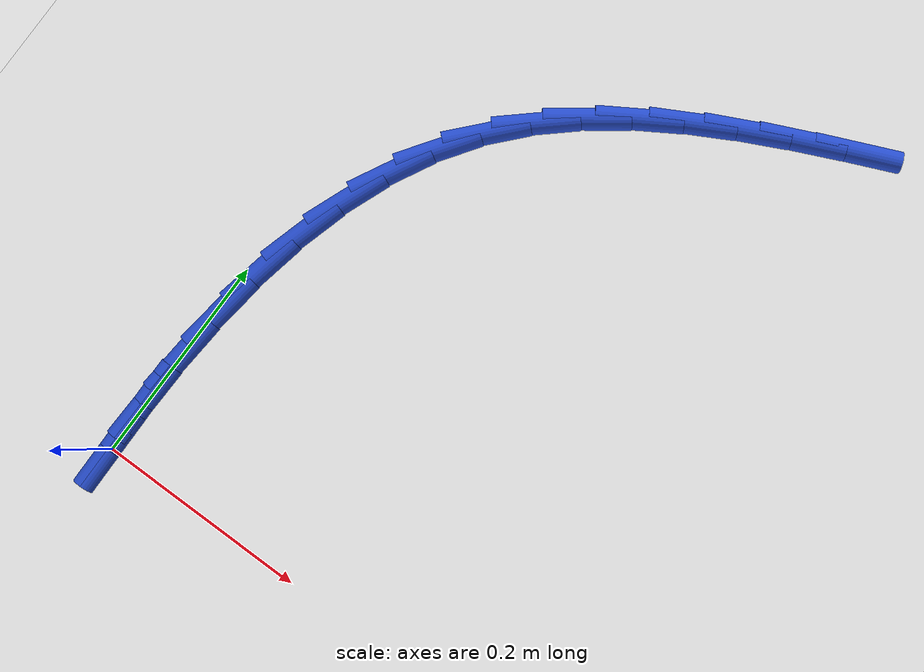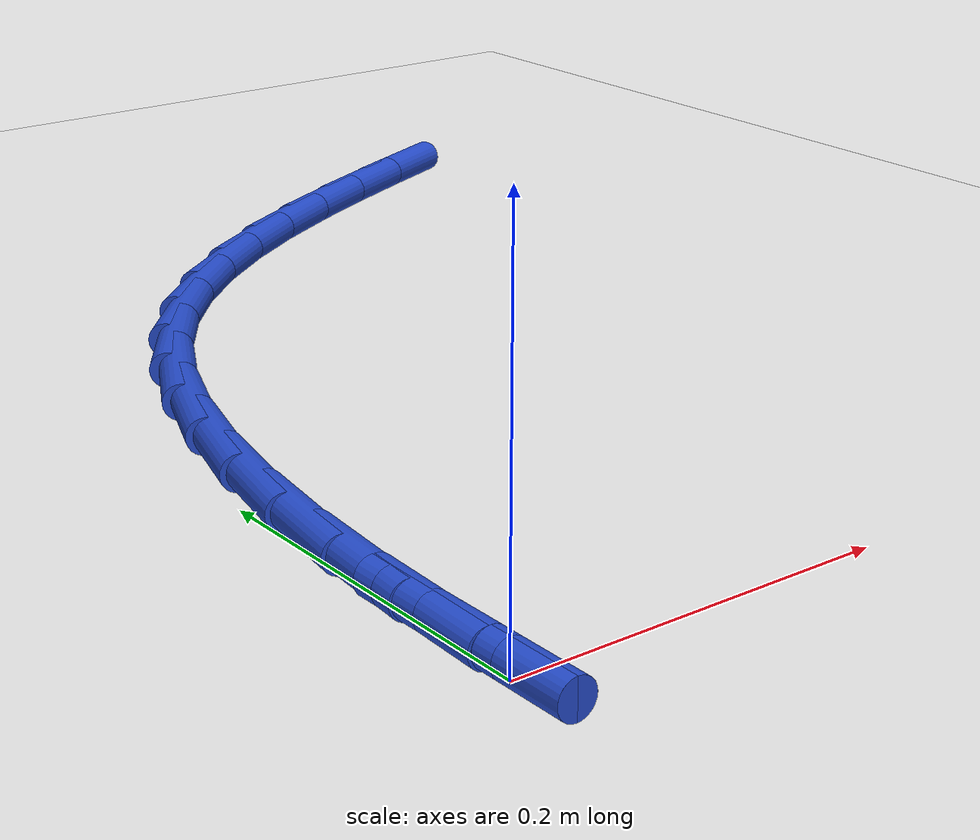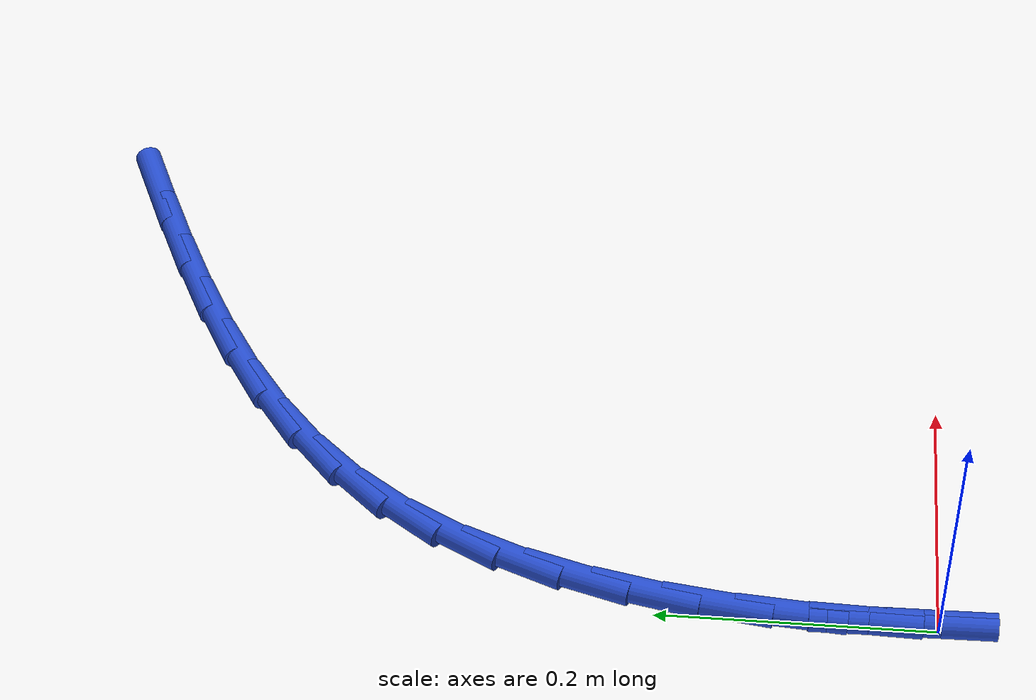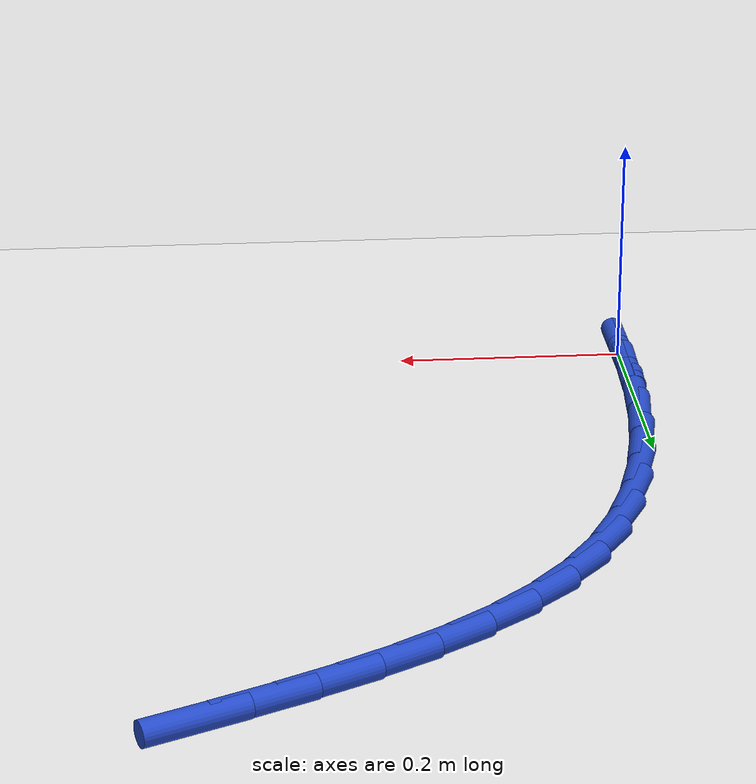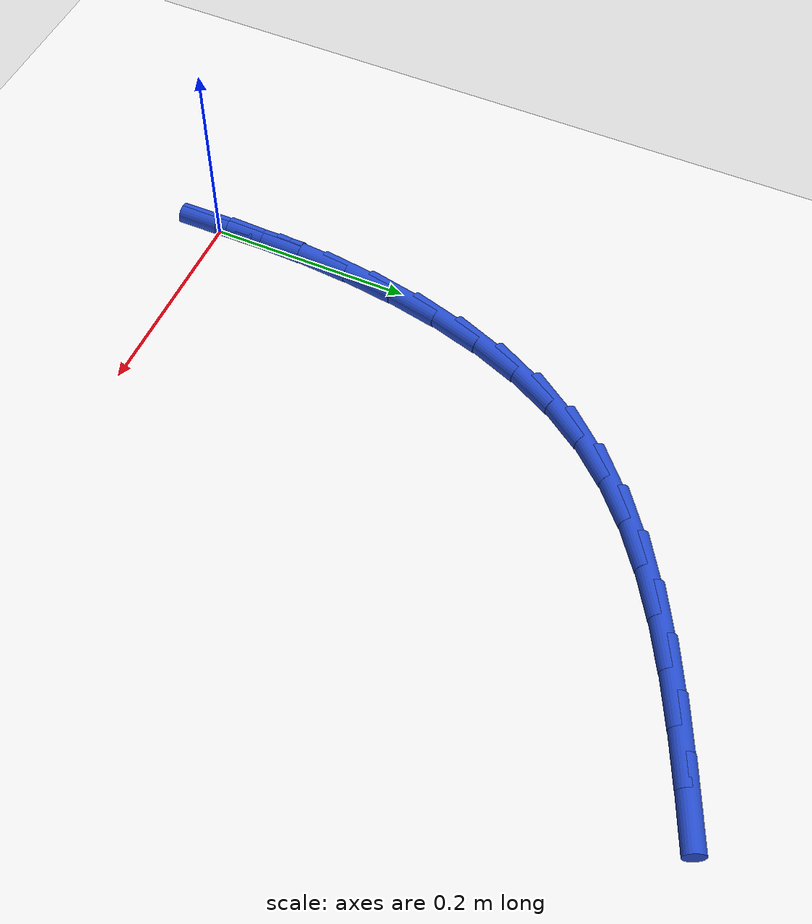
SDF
<sdf version="1.6">
 <world name="default">
  <model name="ground_plane">
   <static>1</static>
   <link name="link">
    <collision name="collision">
     <geometry><plane><normal>0 0 1</normal><size>100 100</size></plane></geometry>
     <surface><friction><ode><mu>100</mu><mu2>50</mu2></ode></friction></surface>
    </collision>
    <visual name="visual">
     <cast_shadows>0</cast_shadows>
     <geometry><plane><normal>0 0 1</normal><size>100 100</size></plane></geometry>
     <material>
      <script><uri>file://media/materials/scripts/gazebo.material</uri><name>Gazebo/WhiteGlow</name></script>
     </material>
    </visual>
   </link>
  </model>
  <model name="line">
   <link name="link_0">
    <pose>-1.3877787807814457e-17 1.3877787807814457e-17 0.01 0 1.57 -1.560731636557664</pose>
    <collision name="collision">
     <geometry><cylinder><radius>0.01</radius><length>0.08</length></cylinder></geometry>
    </collision>
    <visual name="visual">
     <material>
      <script><name>Gazebo/Blue</name><uri>file://media/materials/scripts/gazebo.material</uri></script>
     </material>
     <geometry><cylinder><radius>0.01</radius><length>0.08</length></cylinder></geometry>
    </visual>
   </link>
   <link name="link_1">
    <pose>-0.0005223845337130366 0.051900941056998405 0.01 0 1.57 1.5402072996749345</pose>
    <collision name="collision">
     <geometry><cylinder><radius>0.01</radius><length>0.08</length></cylinder></geometry>
    </collision>
    <visual name="visual">
     <material>
      <script><name>Gazebo/Blue</name><uri>file://media/materials/scripts/gazebo.material</uri></script>
     </material>
     <geometry><cylinder><radius>0.01</radius><length>0.08</length></cylinder></geometry>
    </visual>
   </link>
   <link name="link_2">
    <pose>0.0010700641967369999 0.10394417912810257 0.01 0 1.57 1.4924301519347458</pose>
    <collision name="collision">
     <geometry><cylinder><radius>0.01</radius><length>0.08</length></cylinder></geometry>
    </collision>
    <visual name="visual">
     <material>
      <script><name>Gazebo/Blue</name><uri>file://media/materials/scripts/gazebo.material</uri></script>
     </material>
     <geometry><cylinder><radius>0.01</radius><length>0.08</length></cylinder></geometry>
    </visual>
   </link>
   <link name="link_3">
    <pose>0.005124552543725727 0.15557595863801021 0.01 0 1.57 1.4361473055702652</pose>
    <collision name="collision">
     <geometry><cylinder><radius>0.01</radius><length>0.08</length></cylinder></geometry>
    </collision>
    <visual name="visual">
     <material>
      <script><name>Gazebo/Blue</name><uri>file://media/materials/scripts/gazebo.material</uri></script>
     </material>
     <geometry><cylinder><radius>0.01</radius><length>0.08</length></cylinder></geometry>
    </visual>
   </link>
   <link name="link_4">
    <pose>0.011988286859628777 0.2062425240114192 0.01 0 1.57 1.3696732882570835</pose>
    <collision name="collision">
     <geometry><cylinder><radius>0.01</radius><length>0.08</length></cylinder></geometry>
    </collision>
    <visual name="visual">
     <material>
      <script><name>Gazebo/Blue</name><uri>file://media/materials/scripts/gazebo.material</uri></script>
     </material>
     <geometry><cylinder><radius>0.01</radius><length>0.08</length></cylinder></geometry>
    </visual>
   </link>
   <link name="link_5">
    <pose>0.02200847349682178 0.25539011967302727 0.01 0 1.57 1.291046255590493</pose>
    <collision name="collision">
     <geometry><cylinder><radius>0.01</radius><length>0.08</length></cylinder></geometry>
    </collision>
    <visual name="visual">
     <material>
      <script><name>Gazebo/Blue</name><uri>file://media/materials/scripts/gazebo.material</uri></script>
     </material>
     <geometry><cylinder><radius>0.01</radius><length>0.08</length></cylinder></geometry>
    </visual>
   </link>
   <link name="link_6">
    <pose>0.03553231880768039 0.30246499004753236 0.01 0 1.57 1.19816253137743</pose>
    <collision name="collision">
     <geometry><cylinder><radius>0.01</radius><length>0.08</length></cylinder></geometry>
    </collision>
    <visual name="visual">
     <material>
      <script><name>Gazebo/Blue</name><uri>file://media/materials/scripts/gazebo.material</uri></script>
     </material>
     <geometry><cylinder><radius>0.01</radius><length>0.08</length></cylinder></geometry>
    </visual>
   </link>
   <link name="link_7">
    <pose>0.052907029144580196 0.3469133795596321 0.01 0 1.57 1.0891175648220033</pose>
    <collision name="collision">
     <geometry><cylinder><radius>0.01</radius><length>0.08</length></cylinder></geometry>
    </collision>
    <visual name="visual">
     <material>
      <script><name>Gazebo/Blue</name><uri>file://media/materials/scripts/gazebo.material</uri></script>
     </material>
     <geometry><cylinder><radius>0.01</radius><length>0.08</length></cylinder></geometry>
    </visual>
   </link>
   <link name="link_8">
    <pose>0.07447981085989688 0.38818153263402444 0.01 0 1.57 0.9635173999993287</pose>
    <collision name="collision">
     <geometry><cylinder><radius>0.01</radius><length>0.08</length></cylinder></geometry>
    </collision>
    <visual name="visual">
     <material>
      <script><name>Gazebo/Blue</name><uri>file://media/materials/scripts/gazebo.material</uri></script>
     </material>
     <geometry><cylinder><radius>0.01</radius><length>0.08</length></cylinder></geometry>
    </visual>
   </link>
   <link name="link_9">
    <pose>0.10057786827884474 0.4257393814733775 0.01 0 1.57 0.8364470968662366</pose>
    <collision name="collision">
     <geometry><cylinder><radius>0.01</radius><length>0.08</length></cylinder></geometry>
    </collision>
    <visual name="visual">
     <material>
      <script><name>Gazebo/Blue</name><uri>file://media/materials/scripts/gazebo.material</uri></script>
     </material>
     <geometry><cylinder><radius>0.01</radius><length>0.08</length></cylinder></geometry>
    </visual>
   </link>
   <link name="link_10">
    <pose>0.13110689368760722 0.45955604186369553 0.01 0 1.57 0.7247675098538062</pose>
    <collision name="collision">
     <geometry><cylinder><radius>0.01</radius><length>0.08</length></cylinder></geometry>
    </collision>
    <visual name="visual">
     <material>
      <script><name>Gazebo/Blue</name><uri>file://media/materials/scripts/gazebo.material</uri></script>
     </material>
     <geometry><cylinder><radius>0.01</radius><length>0.08</length></cylinder></geometry>
    </visual>
   </link>
   <link name="link_11">
    <pose>0.16557142511147901 0.49007570409154055 0.01 0 1.57 0.6310425393310027</pose>
    <collision name="collision">
     <geometry><cylinder><radius>0.01</radius><length>0.08</length></cylinder></geometry>
    </collision>
    <visual name="visual">
     <material>
      <script><name>Gazebo/Blue</name><uri>file://media/materials/scripts/gazebo.material</uri></script>
     </material>
     <geometry><cylinder><radius>0.01</radius><length>0.08</length></cylinder></geometry>
    </visual>
   </link>
   <link name="link_12">
    <pose>0.2034600732321568 0.5177614207005721 0.01 0 1.57 0.5553138125785149</pose>
    <collision name="collision">
     <geometry><cylinder><radius>0.01</radius><length>0.08</length></cylinder></geometry>
    </collision>
    <visual name="visual">
     <material>
      <script><name>Gazebo/Blue</name><uri>file://media/materials/scripts/gazebo.material</uri></script>
     </material>
     <geometry><cylinder><radius>0.01</radius><length>0.08</length></cylinder></geometry>
    </visual>
   </link>
   <link name="link_13">
    <pose>0.24426144873133718 0.5430762442344499 0.01 0 1.57 0.4965214114239881</pose>
    <collision name="collision">
     <geometry><cylinder><radius>0.01</radius><length>0.08</length></cylinder></geometry>
    </collision>
    <visual name="visual">
     <material>
      <script><name>Gazebo/Blue</name><uri>file://media/materials/scripts/gazebo.material</uri></script>
     </material>
     <geometry><cylinder><radius>0.01</radius><length>0.08</length></cylinder></geometry>
    </visual>
   </link>
   <link name="link_14">
    <pose>0.28746416229071675 0.5664832272368336 0.01 0 1.57 0.45323070438526</pose>
    <collision name="collision">
     <geometry><cylinder><radius>0.01</radius><length>0.08</length></cylinder></geometry>
    </collision>
    <visual name="visual">
     <material>
      <script><name>Gazebo/Blue</name><uri>file://media/materials/scripts/gazebo.material</uri></script>
     </material>
     <geometry><cylinder><radius>0.01</radius><length>0.08</length></cylinder></geometry>
    </visual>
   </link>
   <link name="link_15">
    <pose>0.3325568245919923 0.5884454222513835 0.01 0 1.57 0.42407744229642985</pose>
    <collision name="collision">
     <geometry><cylinder><radius>0.01</radius><length>0.08</length></cylinder></geometry>
    </collision>
    <visual name="visual">
     <material>
      <script><name>Gazebo/Blue</name><uri>file://media/materials/scripts/gazebo.material</uri></script>
     </material>
     <geometry><cylinder><radius>0.01</radius><length>0.08</length></cylinder></geometry>
    </visual>
   </link>
   <link name="link_16">
    <pose>0.3790280463168604 0.6094258818217587 0.01 0 1.57 0.4079910725440669</pose>
    <collision name="collision">
     <geometry><cylinder><radius>0.01</radius><length>0.08</length></cylinder></geometry>
    </collision>
    <visual name="visual">
     <material>
      <script><name>Gazebo/Blue</name><uri>file://media/materials/scripts/gazebo.material</uri></script>
     </material>
     <geometry><cylinder><radius>0.01</radius><length>0.08</length></cylinder></geometry>
    </visual>
   </link>
   <link name="link_150">
    <pose>0.0 -1.3877787807814457e-16 0.01 0 1.57 -1.5593044116322792</pose>
    <collision name="collision">
     <geometry><cylinder><radius>0.01</radius><length>0.08</length></cylinder></geometry>
    </collision>
    <visual name="visual">
     <material>
      <script><name>Gazebo/Blue</name><uri>file://media/materials/scripts/gazebo.material</uri></script>
     </material>
     <geometry><cylinder><radius>0.01</radius><length>0.08</length></cylinder></geometry>
    </visual>
   </link>
   <link name="link_151">
    <pose>-0.0005974106720573972 0.05198301279947219 0.01 0 1.57 -1.5593044116322794</pose>
    <collision name="collision">
     <geometry><cylinder><radius>0.01</radius><length>0.08</length></cylinder></geometry>
    </collision>
    <visual name="visual">
     <material>
      <script><name>Gazebo/Blue</name><uri>file://media/materials/scripts/gazebo.material</uri></script>
     </material>
     <geometry><cylinder><radius>0.01</radius><length>0.08</length></cylinder></geometry>
    </visual>
   </link>
  </model>
 </world>
</sdf>
